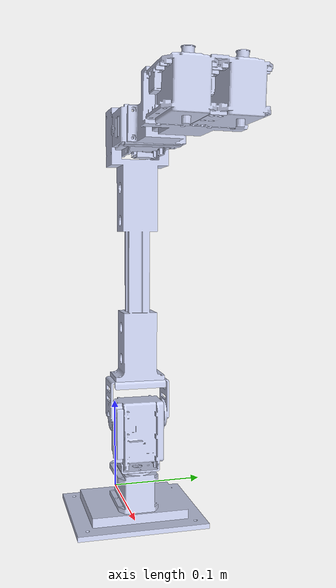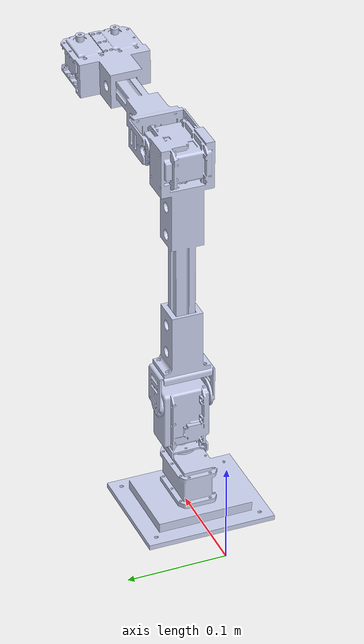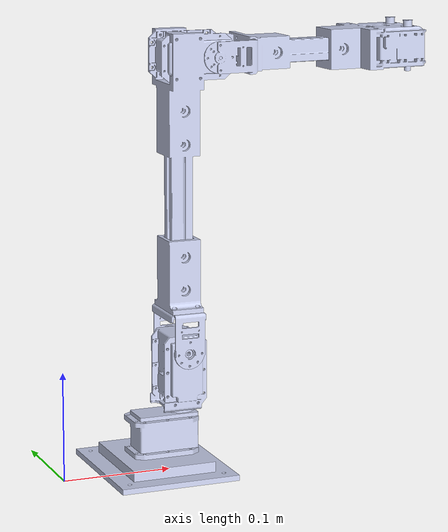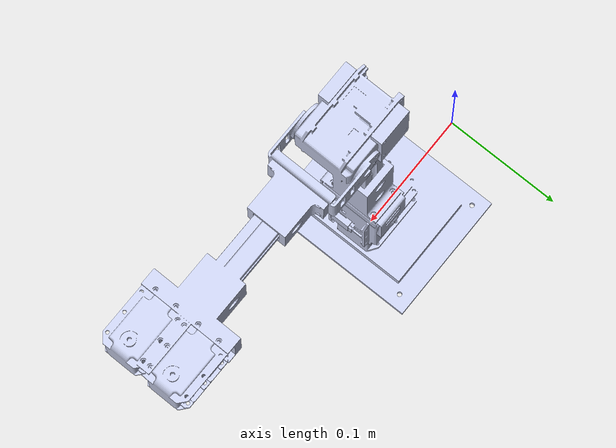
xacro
<?xml version="1.0" encoding="utf-8"?>

<robot name="arm" xmlns:xacro="http://ros.org/wiki/xacro">
  <link name="plate_top_link_1" />
  <joint
    name="arm_base_joint"
    type="fixed">
    <origin
      xyz="0.11 0 0"
      rpy="0 0 0" />
    <parent
      link="plate_top_link_1" />
    <child
      link="arm_base_link" />
  </joint>
<joint
  name="arm_link_3_arm_link_4"
  type="fixed">
  <origin
    xyz="0 -0.19852 0"
    rpy="3.1416 0 -1.5708" />
  <parent
    link="arm_link_3" />
  <child
    link="arm_link_4" />
  <axis
    xyz="0 0 0" />
  <limit
    lower="-3.14"
    upper="3.14"
    effort="0"
    velocity="0" />
</joint>
<link name="arm_link_4"></link>
<link
  name="arm_base_link">
  <inertial>
    <origin
      xyz="-0.03212282198 -0.42012512735 0.42806654755"
      rpy="0 0 0" />
    <mass
      value="0.186163368805018" />
    <inertia
      ixx="0.00012911430163569"
      ixy="6.51866525966857E-10"
      ixz="4.04912675311546E-10"
      iyy="0.000270182092432814"
      iyz="3.35442702197418E-07"
      izz="0.000167882757488322" />
  </inertial>
  <visual>
    <origin
      xyz="0.03237 -0.0645 0.375"
      rpy="0 0 -1.5708" />
    <geometry>
      <mesh
        filename="package://skuba_edu_description/meshes/arm/arm_base_link.STL" />
    </geometry>
    <material
      name="">
      <color
        rgba="0.792156862745098 0.819607843137255 0.933333333333333 1" />
    </material>
  </visual>
  <collision>
    <origin
      xyz="0.03237 -0.0645 0.375"
      rpy="0 0 0" />
    <geometry>
      <mesh
        filename="package://skuba_edu_description/meshes/arm/arm_base_link.STL" />
    </geometry>
  </collision>
</link>
<link
  name="arm_link_1">
  <inertial>
    <origin
      xyz="6.15184211939929E-05 -0.0325958294491363 -0.000169492133248482"
      rpy="0 0 0" />
    <mass
      value="0.0863559618404855" />
    <inertia
      ixx="3.18738615082819E-05"
      ixy="-1.73028253968493E-07"
      ixz="-2.12738742921425E-09"
      iyy="2.21589667428724E-05"
      iyz="9.73665351283212E-09"
      izz="3.96350749701624E-05" />
  </inertial>
  <visual>
    <origin
      xyz="0 0 0.073"
      rpy="1.5708 0 1.5708" />
    <geometry>
      <mesh
        filename="package://skuba_edu_description/meshes/arm/arm_link_1.STL" />
    </geometry>
    <material
      name="">
      <color
        rgba="0.792156862745098 0.819607843137255 0.933333333333333 1" />
    </material>
  </visual>
  <collision>
    <origin
      xyz="0 0 0"
      rpy="0 0 0" />
    <geometry>
      <mesh
        filename="package://skuba_edu_description/meshes/arm/arm_link_1.STL" />
    </geometry>
  </collision>
</link>
<joint
  name="arm_base_link_link_1"
  type="fixed">
  <origin
    xyz="0 0 0.055"
    rpy="0 0 0" />
  <parent
    link="arm_base_link" />
  <child
    link="arm_link_1" />
  <axis
    xyz="0 0 1" />
  <limit
    lower="-3.14"
    upper="3.14"
    effort="0"
    velocity="0" />
</joint>
<link
  name="arm_link_2">
  <inertial>
    <origin
      xyz="0.000203280213561932 -0.193086411594665 0.00531640363050518"
      rpy="0 0 0" />
    <mass
      value="0.203789418700687" />
    <inertia
      ixx="0.000190742524201691"
      ixy="3.60636681187183E-09"
      ixz="-1.81324565296997E-07"
      iyy="6.95147446909765E-05"
      iyz="-2.5389805639446E-09"
      izz="0.000191867605418963" />
  </inertial>
  <visual>
    <origin
      xyz="0 0 0"
      rpy="0 0 0" />
    <geometry>
      <mesh
        filename="package://skuba_edu_description/meshes/arm/arm_link_2.STL" />
    </geometry>
    <material
      name="">
      <color
        rgba="0.792156862745098 0.819607843137255 0.933333333333333 1" />
    </material>
  </visual>
  <collision>
    <origin
      xyz="0 0 0"
      rpy="0 0 0" />
    <geometry>
      <mesh
        filename="package://skuba_edu_description/meshes/arm/arm_link_2.STL" />
    </geometry>
  </collision>
</link>
<joint
  name="arm_link_1_arm_link_2"
  type="fixed">
  <origin
    xyz="0 0 0.058"
    rpy="-1.5708 0 -1.5708" />
  <parent
    link="arm_link_1" />
  <child
    link="arm_link_2" />
  <axis
    xyz="-1 0 0" />
  <limit
    lower="-1.97728351"
    upper="1.96"
    effort="0"
    velocity="0" />
</joint>
<link
  name="arm_link_3">
  <inertial>
    <origin
      xyz="0.000251076986040322 -0.134949597462582 7.19713697072465E-05"
      rpy="0 0 0" />
    <mass
      value="0.172390710019942" />
    <inertia
      ixx="5.70915688480554E-05"
      ixy="8.63831723211208E-09"
      ixz="2.70858587460573E-08"
      iyy="4.10041759288329E-05"
      iyz="3.6456768903629E-07"
      izz="6.06950558357656E-05" />
  </inertial>
  <visual>
    <origin
      xyz="0 0 0"
      rpy="0 0 0" />
    <geometry>
      <mesh
        filename="package://skuba_edu_description/meshes/arm/arm_link_3.STL" />
    </geometry>
    <material
      name="">
      <color
        rgba="0.792156862745098 0.819607843137255 0.933333333333333 1" />
    </material>
  </visual>
  <collision>
    <origin
      xyz="0 0 0"
      rpy="0 0 0" />
    <geometry>
      <mesh
        filename="package://skuba_edu_description/meshes/arm/arm_link_3.STL" />
    </geometry>
  </collision>
</link>
<joint
  name="arm_link_2_arm_link_3"
  type="fixed">
  <origin
    xyz="0.0001861 -0.26323 0.029054"
    rpy="-1.5637 0.006405 0" />
  <parent
    link="arm_link_2" />
  <child
    link="arm_link_3" />
  <axis
    xyz="1 0 0" />
  <limit
    lower="-1.495"
    upper="1.7150"
    effort="0"
    velocity="0" />
</joint>
</robot>
